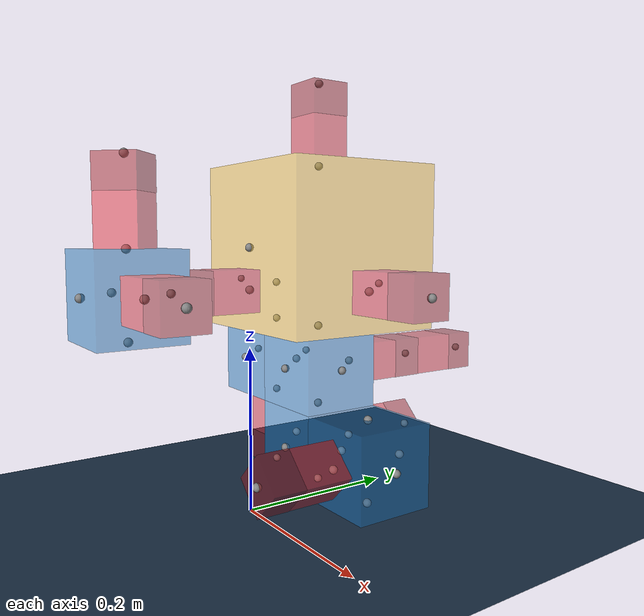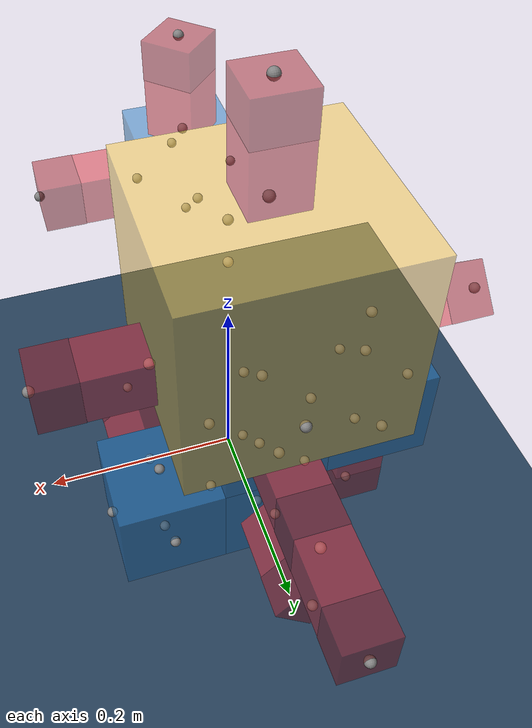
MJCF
<mujoco model="MuJoCo Model">
  <compiler angle="radian"/>

  <option integrator="implicitfast"/>

  <visual>
    <global offwidth="1280" offheight="960"/>
  </visual>

  <default>
    <default class="robot-main">
      <default class="robot-0-11-1-main">
        <default class="robot-0-11-1-11-14-0-main"/>
        <default class="robot-0-11-1-14-7-4-main"/>
        <default class="robot-0-11-1-14-21-3-main"/>
      </default>
      <default class="robot-0-26-5-main"/>
      <default class="robot-0-23-3-main"/>
      <default class="robot-0-10-4-main"/>
      <default class="robot-0-29-2-main"/>
      <default class="robot-26-20-4-main"/>
      <default class="robot-26-5-2-main"/>
      <default class="robot-26-8-0-main"/>
      <default class="robot-20-19-5-main"/>
      <default class="robot-5-4-0-main"/>
      <default class="robot-8-16-5-main"/>
      <default class="robot-8-9-2-main"/>
      <default class="robot-16-17-5-main"/>
    </default>
  </default>

  <asset>
    <texture type="2d" colorspace="auto" name="grid" builtin="checker" rgb1="0.1 0.2 0.3" rgb2="0.2 0.3 0.4" width="600" height="600"/>
    <material name="grid" texture="grid" texuniform="true" texrepeat="3 3" reflectance="0.2"/>
  </asset>

  <worldbody>
    <geom name="floor" size="1 1 0.1" type="plane" material="grid"/>
    <site pos="0 0 0.32062"/>
    <light name="light" pos="0 0 1" dir="0 0 -1" castshadow="false"/>
    <body name="robot-world" pos="0 0 0.32062">
      <joint type="free"/>
      <body name="robot-core">
        <geom name="robot-core" size="0.1 0.1 0.1" pos="0 0.1 0" type="box" mass="1" rgba="0.992157 0.792157 0.25098 0.5"/>
        <site name="robot-core-front" pos="0 0.2 -0.05"/>
        <site name="robot-core-back" pos="0 0 -0.05" quat="0 0 0 1"/>
        <site name="robot-core-left" pos="-0.1 0.1 -0.05" quat="0.707107 0 0 0.707107"/>
        <site name="robot-core-right" pos="0.1 0.1 -0.05" quat="-0.707107 0 0 0.707107"/>
        <site name="robot-core-top" pos="0 0.1 0.1" quat="0.707107 0.707107 0 0"/>
        <site name="robot-core-bottom" pos="0 0.1 -0.1" quat="0 0 -0.707107 0.707107"/>
        <body name="robot-0-11-1-hinge" pos="0 0 -0.05" quat="0 -0.707107 0 -0.707107">
          <body name="robot-0-11-1-stator" pos="0 0.03 0">
            <geom name="robot-0-11-1-stator" size="0.02475 0.0297 0.02475" type="box" mass="0.02" rgba="0.87451 0.160784 0.207843 0.5"/>
          </body>
          <body name="robot-0-11-1-rotor" pos="0 0.08 0">
            <joint name="robot-0-11-1-servo" pos="0 -0.02 0" axis="0 0 1"/>
            <geom name="robot-0-11-1-rotor" size="0.025 0.02 0.025" type="box" mass="0.04" rgba="0.627451 0.0941176 0.129412 0.5"/>
            <site name="robot-0-11-1-hinge-front" pos="0 0.02 0"/>
            <body name="robot-0-11-1-11-14-0-core" pos="0 0.02 0" quat="0.707107 0 0.707107 0">
              <geom name="robot-0-11-1-11-14-0-core" size="0.05 0.05 0.05" pos="0 0.05 0" type="box" mass="0.055" rgba="0.109804 0.466667 0.764706 0.5"/>
              <site name="robot-0-11-1-11-14-0-core-front" pos="0 0.1 0"/>
              <site name="robot-0-11-1-11-14-0-core-left" pos="-0.05 0.05 0" quat="0.707107 0 0 0.707107"/>
              <site name="robot-0-11-1-11-14-0-core-right" pos="0.05 0.05 0" quat="-0.707107 0 0 0.707107"/>
              <site name="robot-0-11-1-11-14-0-core-top" pos="0 0.05 0.05" quat="0.707107 0.707107 0 0"/>
              <site name="robot-0-11-1-11-14-0-core-bottom" pos="0 0.05 -0.05" quat="0 0 -0.707107 0.707107"/>
              <body name="robot-0-11-1-14-7-4-hinge" pos="0 0.05 0.05" quat="0.653215 0.653215 0.270759 0.270759">
                <body name="robot-0-11-1-14-7-4-stator" pos="0 0.03 0">
                  <geom name="robot-0-11-1-14-7-4-stator" size="0.02475 0.0297 0.02475" type="box" mass="0.02" rgba="0.87451 0.160784 0.207843 0.5"/>
                </body>
                <body name="robot-0-11-1-14-7-4-rotor" pos="0 0.08 0">
                  <joint name="robot-0-11-1-14-7-4-servo" pos="0 -0.02 0" axis="0 0 1"/>
                  <geom name="robot-0-11-1-14-7-4-rotor" size="0.025 0.02 0.025" type="box" mass="0.04" rgba="0.627451 0.0941176 0.129412 0.5"/>
                  <site name="robot-0-11-1-14-7-4-hinge-front" pos="0 0.02 0"/>
                </body>
              </body>
              <body name="robot-0-11-1-14-21-3-hinge" pos="-0.05 0.05 0" quat="0.5 -0.5 0.5 0.5">
                <body name="robot-0-11-1-14-21-3-stator" pos="0 0.03 0">
                  <geom name="robot-0-11-1-14-21-3-stator" size="0.02475 0.0297 0.02475" type="box" mass="0.02" rgba="0.87451 0.160784 0.207843 0.5"/>
                </body>
                <body name="robot-0-11-1-14-21-3-rotor" pos="0 0.08 0">
                  <joint name="robot-0-11-1-14-21-3-servo" pos="0 -0.02 0" axis="0 0 1"/>
                  <geom name="robot-0-11-1-14-21-3-rotor" size="0.025 0.02 0.025" type="box" mass="0.04" rgba="0.627451 0.0941176 0.129412 0.5"/>
                  <site name="robot-0-11-1-14-21-3-hinge-front" pos="0 0.02 0"/>
                </body>
              </body>
            </body>
          </body>
        </body>
        <body name="robot-0-26-5-core" pos="0 0.1 -0.1" quat="0.5 -0.5 -0.5 0.5">
          <geom name="robot-0-26-5-core" size="0.05 0.05 0.05" pos="0 0.05 0" type="box" mass="0.055" rgba="0.109804 0.466667 0.764706 0.5"/>
          <site name="robot-0-26-5-core-front" pos="0 0.1 0"/>
          <site name="robot-0-26-5-core-left" pos="-0.05 0.05 0" quat="0.707107 0 0 0.707107"/>
          <site name="robot-0-26-5-core-right" pos="0.05 0.05 0" quat="-0.707107 0 0 0.707107"/>
          <site name="robot-0-26-5-core-top" pos="0 0.05 0.05" quat="0.707107 0.707107 0 0"/>
          <site name="robot-0-26-5-core-bottom" pos="0 0.05 -0.05" quat="0 0 -0.707107 0.707107"/>
          <body name="robot-26-20-4-core" pos="0 0.05 0.05" quat="0.707107 0.707107 0 0">
            <geom name="robot-26-20-4-core" size="0.05 0.05 0.05" pos="0 0.05 0" type="box" mass="0.055" rgba="0.109804 0.466667 0.764706 0.5"/>
            <site name="robot-26-20-4-core-front" pos="0 0.1 0"/>
            <site name="robot-26-20-4-core-left" pos="-0.05 0.05 0" quat="0.707107 0 0 0.707107"/>
            <site name="robot-26-20-4-core-right" pos="0.05 0.05 0" quat="-0.707107 0 0 0.707107"/>
            <site name="robot-26-20-4-core-top" pos="0 0.05 0.05" quat="0.707107 0.707107 0 0"/>
            <site name="robot-26-20-4-core-bottom" pos="0 0.05 -0.05" quat="0 0 -0.707107 0.707107"/>
            <body name="robot-20-19-5-hinge" pos="0 0.05 -0.05" quat="0.5 -0.5 -0.5 0.5">
              <body name="robot-20-19-5-stator" pos="0 0.03 0">
                <geom name="robot-20-19-5-stator" size="0.02475 0.0297 0.02475" type="box" mass="0.02" rgba="0.87451 0.160784 0.207843 0.5"/>
              </body>
              <body name="robot-20-19-5-rotor" pos="0 0.08 0">
                <joint name="robot-20-19-5-servo" pos="0 -0.02 0" axis="0 0 1"/>
                <geom name="robot-20-19-5-rotor" size="0.025 0.02 0.025" type="box" mass="0.04" rgba="0.627451 0.0941176 0.129412 0.5"/>
                <site name="robot-20-19-5-hinge-front" pos="0 0.02 0"/>
              </body>
            </body>
          </body>
          <body name="robot-26-5-2-hinge" pos="0.05 0.05 0" quat="0.5 -0.5 -0.5 -0.5">
            <body name="robot-26-5-2-stator" pos="0 0.03 0">
              <geom name="robot-26-5-2-stator" size="0.02475 0.0297 0.02475" type="box" mass="0.02" rgba="0.87451 0.160784 0.207843 0.5"/>
            </body>
            <body name="robot-26-5-2-rotor" pos="0 0.08 0">
              <joint name="robot-26-5-2-servo" pos="0 -0.02 0" axis="0 0 1"/>
              <geom name="robot-26-5-2-rotor" size="0.025 0.02 0.025" type="box" mass="0.04" rgba="0.627451 0.0941176 0.129412 0.5"/>
              <site name="robot-26-5-2-hinge-front" pos="0 0.02 0"/>
              <body name="robot-5-4-0-hinge" pos="0 0.02 0" quat="-0.707107 0 0.707107 0">
                <body name="robot-5-4-0-stator" pos="0 0.03 0">
                  <geom name="robot-5-4-0-stator" size="0.02475 0.0297 0.02475" type="box" mass="0.02" rgba="0.87451 0.160784 0.207843 0.5"/>
                </body>
                <body name="robot-5-4-0-rotor" pos="0 0.08 0">
                  <joint name="robot-5-4-0-servo" pos="0 -0.02 0" axis="0 0 1"/>
                  <geom name="robot-5-4-0-rotor" size="0.025 0.02 0.025" type="box" mass="0.04" rgba="0.627451 0.0941176 0.129412 0.5"/>
                  <site name="robot-5-4-0-hinge-front" pos="0 0.02 0"/>
                </body>
              </body>
            </body>
          </body>
          <body name="robot-26-8-0-core" pos="0 0.1 0">
            <geom name="robot-26-8-0-core" size="0.05 0.05 0.05" pos="0 0.05 0" type="box" mass="0.055" rgba="0.109804 0.466667 0.764706 0.5"/>
            <site name="robot-26-8-0-core-front" pos="0 0.1 0"/>
            <site name="robot-26-8-0-core-left" pos="-0.05 0.05 0" quat="0.707107 0 0 0.707107"/>
            <site name="robot-26-8-0-core-right" pos="0.05 0.05 0" quat="-0.707107 0 0 0.707107"/>
            <site name="robot-26-8-0-core-top" pos="0 0.05 0.05" quat="0.707107 0.707107 0 0"/>
            <site name="robot-26-8-0-core-bottom" pos="0 0.05 -0.05" quat="0 0 -0.707107 0.707107"/>
            <body name="robot-8-16-5-core" pos="0 0.05 -0.05" quat="0.5 -0.5 0.5 -0.5">
              <geom name="robot-8-16-5-core" size="0.05 0.05 0.05" pos="0 0.05 0" type="box" mass="0.055" rgba="0.109804 0.466667 0.764706 0.5"/>
              <site name="robot-8-16-5-core-front" pos="0 0.1 0"/>
              <site name="robot-8-16-5-core-left" pos="-0.05 0.05 0" quat="0.707107 0 0 0.707107"/>
              <site name="robot-8-16-5-core-right" pos="0.05 0.05 0" quat="-0.707107 0 0 0.707107"/>
              <site name="robot-8-16-5-core-top" pos="0 0.05 0.05" quat="0.707107 0.707107 0 0"/>
              <site name="robot-8-16-5-core-bottom" pos="0 0.05 -0.05" quat="0 0 -0.707107 0.707107"/>
              <body name="robot-16-17-5-hinge" pos="0 0.05 -0.05" quat="0.653215 -0.653215 -0.270759 0.270759">
                <body name="robot-16-17-5-stator" pos="0 0.03 0">
                  <geom name="robot-16-17-5-stator" size="0.02475 0.0297 0.02475" type="box" mass="0.02" rgba="0.87451 0.160784 0.207843 0.5"/>
                </body>
                <body name="robot-16-17-5-rotor" pos="0 0.08 0">
                  <joint name="robot-16-17-5-servo" pos="0 -0.02 0" axis="0 0 1"/>
                  <geom name="robot-16-17-5-rotor" size="0.025 0.02 0.025" type="box" mass="0.04" rgba="0.627451 0.0941176 0.129412 0.5"/>
                  <site name="robot-16-17-5-hinge-front" pos="0 0.02 0"/>
                </body>
              </body>
            </body>
            <body name="robot-8-9-2-hinge" pos="0.05 0.05 0" quat="-0.270759 -0.653215 -0.653215 0.270759">
              <body name="robot-8-9-2-stator" pos="0 0.03 0">
                <geom name="robot-8-9-2-stator" size="0.02475 0.0297 0.02475" type="box" mass="0.02" rgba="0.87451 0.160784 0.207843 0.5"/>
              </body>
              <body name="robot-8-9-2-rotor" pos="0 0.08 0">
                <joint name="robot-8-9-2-servo" pos="0 -0.02 0" axis="0 0 1"/>
                <geom name="robot-8-9-2-rotor" size="0.025 0.02 0.025" type="box" mass="0.04" rgba="0.627451 0.0941176 0.129412 0.5"/>
                <site name="robot-8-9-2-hinge-front" pos="0 0.02 0"/>
              </body>
            </body>
          </body>
        </body>
        <body name="robot-0-23-3-hinge" pos="-0.1 0.1 -0.05" quat="0.653215 -0.270759 0.270759 0.653215">
          <body name="robot-0-23-3-stator" pos="0 0.03 0">
            <geom name="robot-0-23-3-stator" size="0.02475 0.0297 0.02475" type="box" mass="0.02" rgba="0.87451 0.160784 0.207843 0.5"/>
          </body>
          <body name="robot-0-23-3-rotor" pos="0 0.08 0">
            <joint name="robot-0-23-3-servo" pos="0 -0.02 0" axis="0 0 1"/>
            <geom name="robot-0-23-3-rotor" size="0.025 0.02 0.025" type="box" mass="0.04" rgba="0.627451 0.0941176 0.129412 0.5"/>
            <site name="robot-0-23-3-hinge-front" pos="0 0.02 0"/>
          </body>
        </body>
        <body name="robot-0-10-4-hinge" pos="0 0.1 0.1" quat="0.5 0.5 0.5 0.5">
          <body name="robot-0-10-4-stator" pos="0 0.03 0">
            <geom name="robot-0-10-4-stator" size="0.02475 0.0297 0.02475" type="box" mass="0.02" rgba="0.87451 0.160784 0.207843 0.5"/>
          </body>
          <body name="robot-0-10-4-rotor" pos="0 0.08 0">
            <joint name="robot-0-10-4-servo" pos="0 -0.02 0" axis="0 0 1"/>
            <geom name="robot-0-10-4-rotor" size="0.025 0.02 0.025" type="box" mass="0.04" rgba="0.627451 0.0941176 0.129412 0.5"/>
            <site name="robot-0-10-4-hinge-front" pos="0 0.02 0"/>
          </body>
        </body>
        <body name="robot-0-29-2-hinge" pos="0.1 0.1 -0.05" quat="-0.707107 0 0 0.707107">
          <body name="robot-0-29-2-stator" pos="0 0.03 0">
            <geom name="robot-0-29-2-stator" size="0.02475 0.0297 0.02475" type="box" mass="0.02" rgba="0.87451 0.160784 0.207843 0.5"/>
          </body>
          <body name="robot-0-29-2-rotor" pos="0 0.08 0">
            <joint name="robot-0-29-2-servo" pos="0 -0.02 0" axis="0 0 1"/>
            <geom name="robot-0-29-2-rotor" size="0.025 0.02 0.025" type="box" mass="0.04" rgba="0.627451 0.0941176 0.129412 0.5"/>
            <site name="robot-0-29-2-hinge-front" pos="0 0.02 0"/>
          </body>
        </body>
      </body>
    </body>
  </worldbody>

  <contact>
    <exclude body1="robot-0-11-1-stator" body2="robot-0-11-1-rotor"/>
    <exclude body1="robot-0-11-1-14-7-4-stator" body2="robot-0-11-1-14-7-4-rotor"/>
    <exclude body1="robot-0-11-1-14-21-3-stator" body2="robot-0-11-1-14-21-3-rotor"/>
    <exclude body1="robot-20-19-5-stator" body2="robot-20-19-5-rotor"/>
    <exclude body1="robot-26-5-2-stator" body2="robot-26-5-2-rotor"/>
    <exclude body1="robot-5-4-0-stator" body2="robot-5-4-0-rotor"/>
    <exclude body1="robot-16-17-5-stator" body2="robot-16-17-5-rotor"/>
    <exclude body1="robot-8-9-2-stator" body2="robot-8-9-2-rotor"/>
    <exclude body1="robot-0-23-3-stator" body2="robot-0-23-3-rotor"/>
    <exclude body1="robot-0-10-4-stator" body2="robot-0-10-4-rotor"/>
    <exclude body1="robot-0-29-2-stator" body2="robot-0-29-2-rotor"/>
  </contact>

  <actuator>
    <general name="robot-0-11-1-servo" joint="robot-0-11-1-servo" ctrlrange="-1.5708 1.5708" dynprm="0 0 0 0 0 0 0 0 0 0" biastype="affine" biasprm="0 -1 -1"/>
    <general name="robot-0-11-1-14-7-4-servo" joint="robot-0-11-1-14-7-4-servo" ctrlrange="-1.5708 1.5708" dynprm="0 0 0 0 0 0 0 0 0 0" biastype="affine" biasprm="0 -1 -1"/>
    <general name="robot-0-11-1-14-21-3-servo" joint="robot-0-11-1-14-21-3-servo" ctrlrange="-1.5708 1.5708" dynprm="0 0 0 0 0 0 0 0 0 0" biastype="affine" biasprm="0 -1 -1"/>
    <general name="robot-0-23-3-servo" joint="robot-0-23-3-servo" ctrlrange="-1.5708 1.5708" dynprm="0 0 0 0 0 0 0 0 0 0" biastype="affine" biasprm="0 -1 -1"/>
    <general name="robot-0-10-4-servo" joint="robot-0-10-4-servo" ctrlrange="-1.5708 1.5708" dynprm="0 0 0 0 0 0 0 0 0 0" biastype="affine" biasprm="0 -1 -1"/>
    <general name="robot-0-29-2-servo" joint="robot-0-29-2-servo" ctrlrange="-1.5708 1.5708" dynprm="0 0 0 0 0 0 0 0 0 0" biastype="affine" biasprm="0 -1 -1"/>
    <general name="robot-26-5-2-servo" joint="robot-26-5-2-servo" ctrlrange="-1.5708 1.5708" dynprm="0 0 0 0 0 0 0 0 0 0" biastype="affine" biasprm="0 -1 -1"/>
    <general name="robot-20-19-5-servo" joint="robot-20-19-5-servo" ctrlrange="-1.5708 1.5708" dynprm="0 0 0 0 0 0 0 0 0 0" biastype="affine" biasprm="0 -1 -1"/>
    <general name="robot-5-4-0-servo" joint="robot-5-4-0-servo" ctrlrange="-1.5708 1.5708" dynprm="0 0 0 0 0 0 0 0 0 0" biastype="affine" biasprm="0 -1 -1"/>
    <general name="robot-8-9-2-servo" joint="robot-8-9-2-servo" ctrlrange="-1.5708 1.5708" dynprm="0 0 0 0 0 0 0 0 0 0" biastype="affine" biasprm="0 -1 -1"/>
    <general name="robot-16-17-5-servo" joint="robot-16-17-5-servo" ctrlrange="-1.5708 1.5708" dynprm="0 0 0 0 0 0 0 0 0 0" biastype="affine" biasprm="0 -1 -1"/>
  </actuator>
</mujoco>
